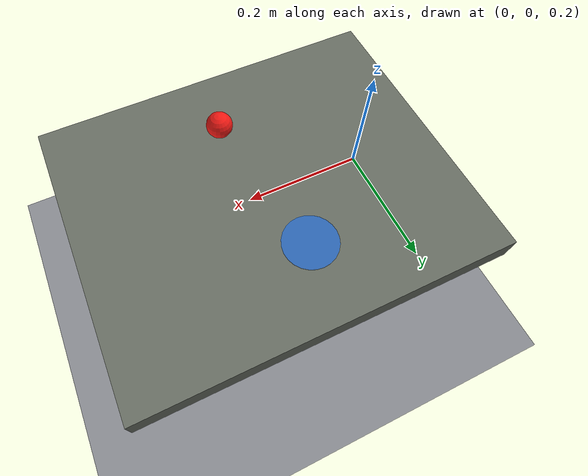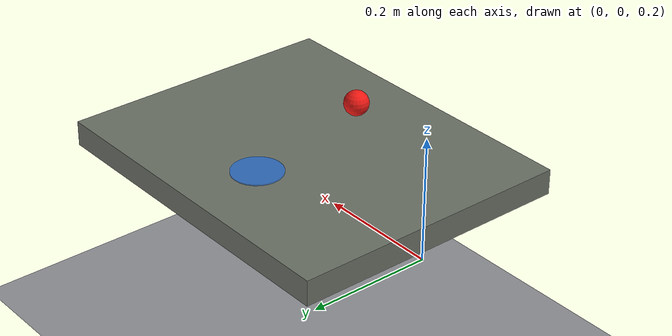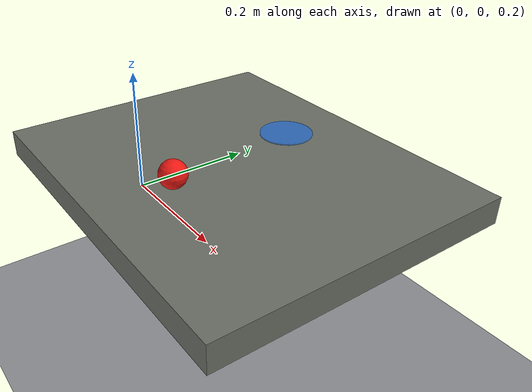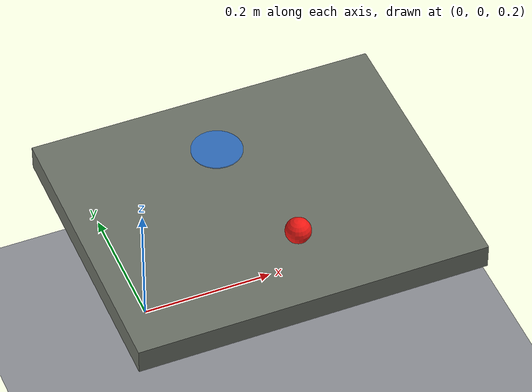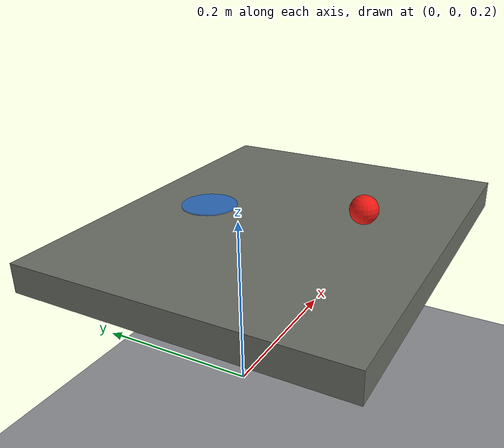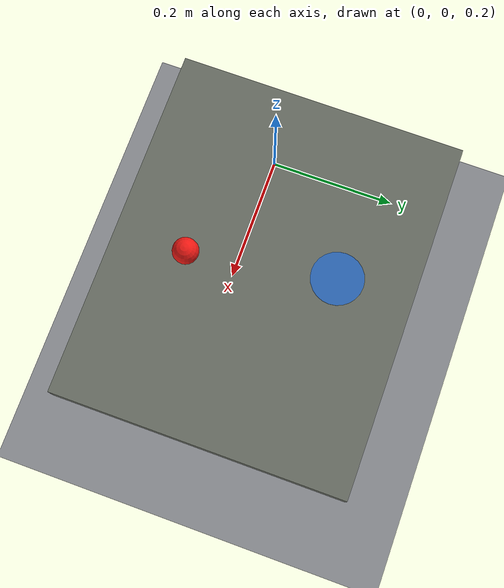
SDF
<?xml version="1.0"?>
<sdf version="1.9">
  <world name="mecharm_pick_place">
    <physics name="1ms" type="ignored">
      <max_step_size>0.001</max_step_size>
      <real_time_factor>1.0</real_time_factor>
    </physics>
    <plugin filename="gz-sim-physics-system" name="gz::sim::systems::Physics"/>
    <plugin filename="gz-sim-user-commands-system" name="gz::sim::systems::UserCommands"/>
    <plugin filename="gz-sim-scene-broadcaster-system" name="gz::sim::systems::SceneBroadcaster"/>
    <plugin filename="gz-sim-contact-system" name="gz::sim::systems::Contact"/>

    <light name="sun" type="directional">
      <cast_shadows>true</cast_shadows>
      <pose>0 0 4 0 0 0</pose>
      <diffuse>0.8 0.8 0.8 1</diffuse>
      <specular>0.2 0.2 0.2 1</specular>
      <direction>-0.5 0.1 -0.9</direction>
    </light>

    <model name="ground">
      <static>true</static>
      <link name="ground_link">
        <collision name="collision">
          <geometry><plane><normal>0 0 1</normal><size>4 4</size></plane></geometry>
        </collision>
        <visual name="visual">
          <geometry><plane><normal>0 0 1</normal><size>4 4</size></plane></geometry>
          <material><diffuse>0.55 0.56 0.58 1</diffuse></material>
        </visual>
      </link>
    </model>

    <model name="table">
      <static>true</static>
      <pose>0.20 0.05 0.30 0 0 0</pose>
      <link name="table_link">
        <collision name="table_top_collision">
          <geometry><box><size>0.55 0.45 0.04</size></box></geometry>
          <surface>
            <friction><ode><mu>0.9</mu><mu2>0.9</mu2></ode></friction>
            <contact><ode><kp>1000000</kp><kd>10</kd></ode></contact>
          </surface>
        </collision>
        <visual name="table_top_visual">
          <geometry><box><size>0.55 0.45 0.04</size></box></geometry>
          <material><diffuse>0.42 0.44 0.40 1</diffuse></material>
        </visual>
      </link>
      <plugin filename="ignition-gazebo-detachable-joint-system"
              name="ignition::gazebo::systems::DetachableJoint">
        <parent_link>table_link</parent_link>
        <child_model>target_ball</child_model>
        <child_link>ball_link</child_link>
        <detach_topic>/target_ball_table/detach</detach_topic>
        <attach_topic>/target_ball_table/attach</attach_topic>
        <output_topic>/target_ball_table/state</output_topic>
      </plugin>
    </model>

    <model name="target_ball">
      <pose>0.22 -0.06 0.345 0 0 0</pose>
      <link name="ball_link">
        <!-- Keep the ball dynamic for grasp attachment, but suppress rolling on the table. -->
        <velocity_decay>
          <linear>2.0</linear>
          <angular>100.0</angular>
        </velocity_decay>
        <inertial>
          <mass>0.06</mass>
          <inertia>
            <ixx>0.0000024</ixx>
            <iyy>0.0000024</iyy>
            <izz>0.0000024</izz>
          </inertia>
        </inertial>
        <!-- The visual sphere is grasped by attachment. A small hidden foot
             provides table / plate contact without deforming one gripper jaw. -->
        <collision name="ball_support_collision">
          <pose>0 0 -0.015 0 0 0</pose>
          <geometry><cylinder><radius>0.004</radius><length>0.01</length></cylinder></geometry>
          <surface>
            <friction><ode><mu>10.0</mu><mu2>10.0</mu2></ode></friction>
            <contact><ode><kp>1000000</kp><kd>20</kd></ode></contact>
          </surface>
        </collision>
        <visual name="ball_visual">
          <geometry><sphere><radius>0.02</radius></sphere></geometry>
          <material><diffuse>0.95 0.10 0.08 1</diffuse></material>
        </visual>
      </link>
    </model>

    <model name="place_marker">
      <static>true</static>
      <pose>0.18 0.16 0.326 0 0 0</pose>
      <link name="marker_link">
        <visual name="visual">
          <geometry><cylinder><radius>0.04</radius><length>0.002</length></cylinder></geometry>
          <material><diffuse>0.10 0.45 0.95 0.65</diffuse></material>
        </visual>
      </link>
    </model>
  </world>
</sdf>
